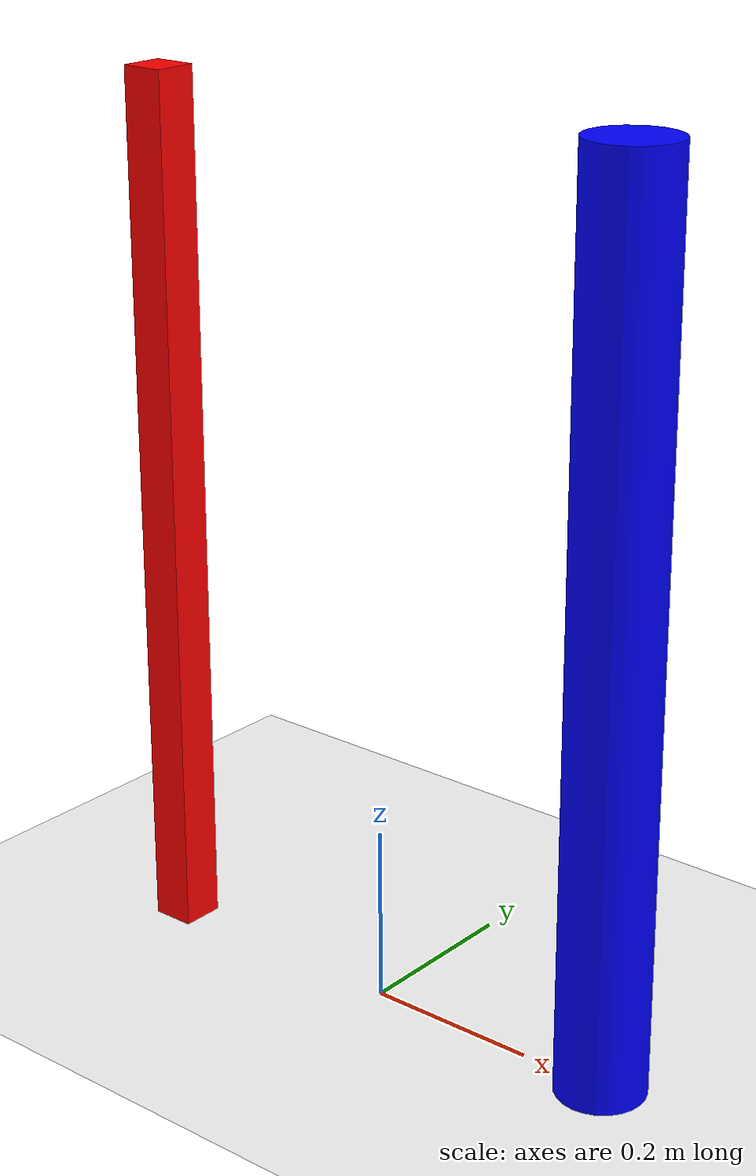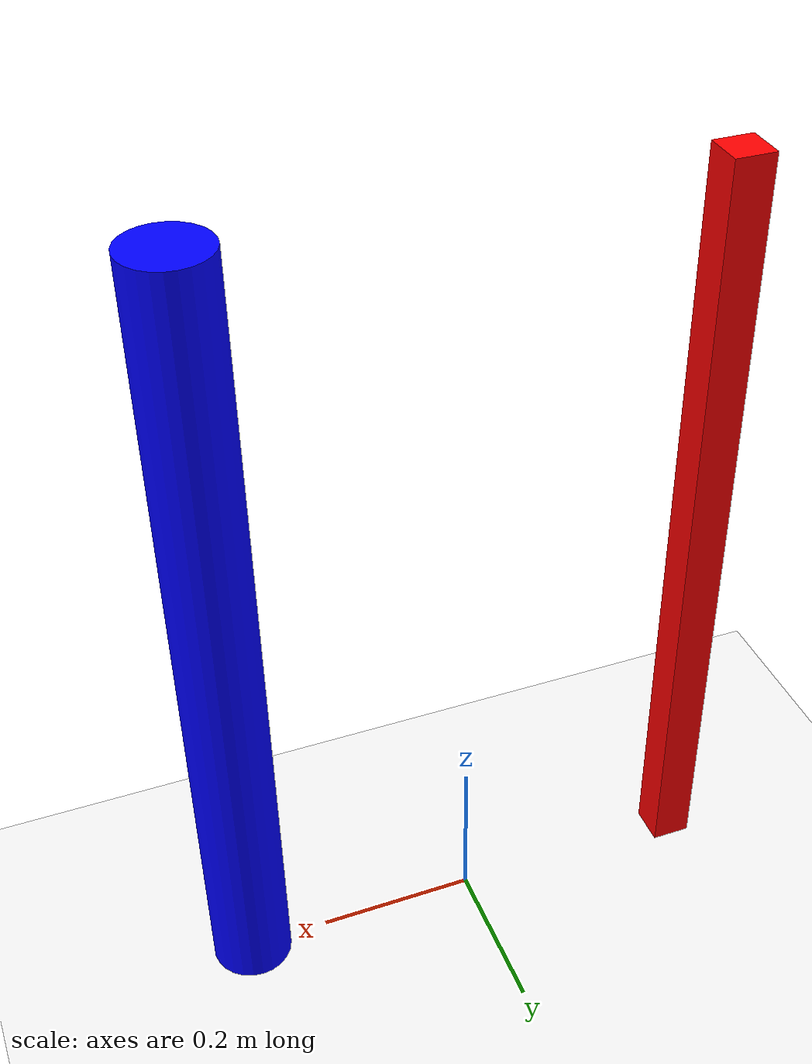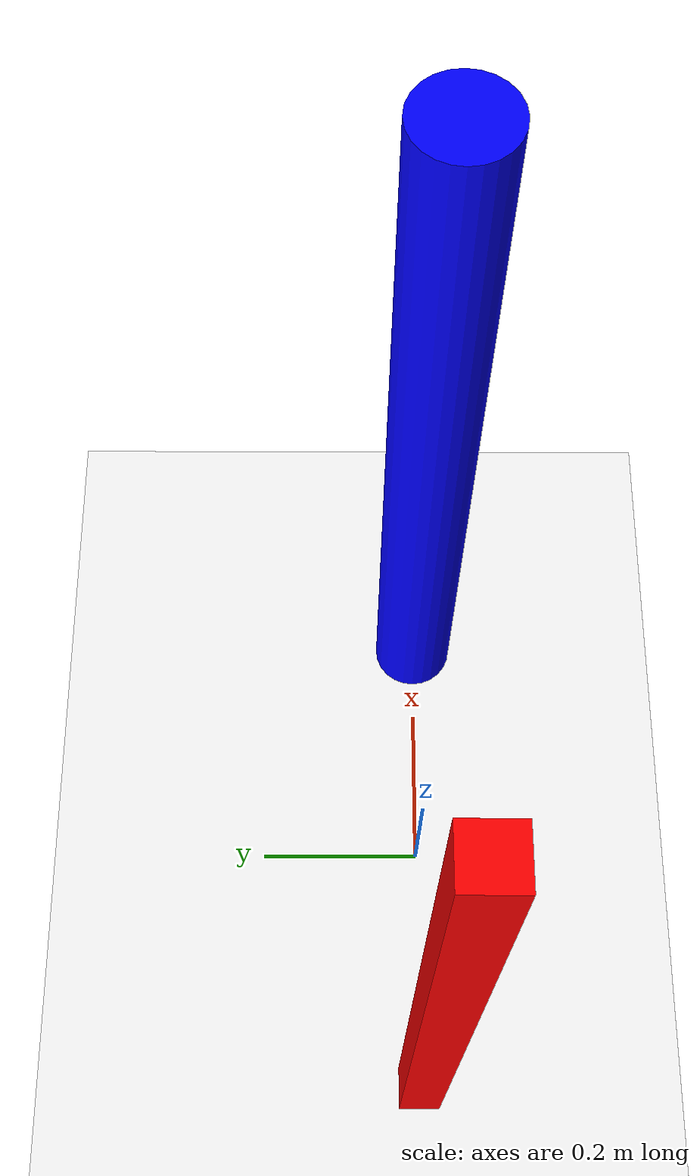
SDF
<?xml version="1.0"?>
<sdf version="1.6">
  <world name="mundo_simulacion">
    <gravity>0 0 -9.8</gravity>

    <model name="suelo">
      <static>true</static>
      <link name="suelo_link">
        <collision name="suelo_collision">
          <geometry>
            <plane>
              <normal>0 0 1</normal> <!-- Normal hacia arriba en Z -->
              <size>50 50</size> <!-- Superficie grande para cubrir el área -->
            </plane>
          </geometry>
          <surface>
            <contact>
              <ode>
                <kp>100000</kp>   <!-- Rigidez del contacto -->
                <kd>1.0</kd>      <!-- Amortiguación del contacto -->
              </ode>
            </contact>
            <friction>
              <ode>
                <mu>1.0</mu> <!-- Coeficiente de fricción -->
                <mu2>1.0</mu2>
              </ode>
            </friction>
          </surface>
        </collision>
        <visual name="suelo_visual">
          <geometry>
            <plane>
              <normal>0 0 1</normal>
              <size>50 50</size>
            </plane>
          </geometry>
          <material>
            <ambient>0.98 0.98 0.98 1</ambient>
            <diffuse>0.98 0.98 0.98 1</diffuse>
          </material>
        </visual>
      </link>
    </model>

    <!-- Obstáculo fijo elástico -->
    <model name="obstaculo_elastico">
      <static>true</static>

      <pose>0.3 0 0.5 0 0 0</pose>

      <link name="link">
        <collision name="collision">
          <geometry>
            <cylinder>
              <radius>0.05</radius>
              <length>1</length>
            </cylinder>
          </geometry>

          <surface>
            <contact>
              <ode>
                <kp>1000000</kp>
                <kd>10</kd>
              </ode>
            </contact>

            <bounce>
              <restitution_coefficient>0.8</restitution_coefficient>
              <threshold>0.1</threshold>
            </bounce>

            <friction>
              <ode>
                <mu>1</mu>
                <mu2>1</mu2>
              </ode>
            </friction>
          </surface>
        </collision>

        <visual name="visual">
          <geometry>
            <cylinder>
              <radius>0.05</radius>
              <length>1</length>
            </cylinder>
          </geometry>

          <material>
            <ambient>0 0 1 1</ambient>
            <diffuse>0 0 1 1</diffuse>
          </material>
        </visual>
      </link>
    </model>

    <!-- Obstáculo móvil -->
    <model name="bloque_caible">

      <pose>-0.3 0 0.5 0 0 0</pose>

      <link name="link">

        <inertial>
          <mass>2.0</mass>

          <inertia>
            <ixx>0.05</ixx>
            <iyy>0.05</iyy>
            <izz>0.05</izz>
          </inertia>
        </inertial>

        <collision name="collision">
          <geometry>
            <box>
              <size>0.05 0.05 1</size>
            </box>
          </geometry>

          <surface>
            <contact>
              <ode>
                <kp>100000</kp>
                <kd>5</kd>
              </ode>
            </contact>

            <friction>
              <ode>
                <mu>0.8</mu>
                <mu2>0.8</mu2>
              </ode>
            </friction>
          </surface>
        </collision>

        <visual name="visual">
          <geometry>
            <box>
              <size>0.05 0.05 1</size>
            </box>
          </geometry>

          <material>
            <ambient>1 0 0 1</ambient>
            <diffuse>1 0 0 1</diffuse>
          </material>
        </visual>

      </link>
    </model>

  </world>
</sdf>
